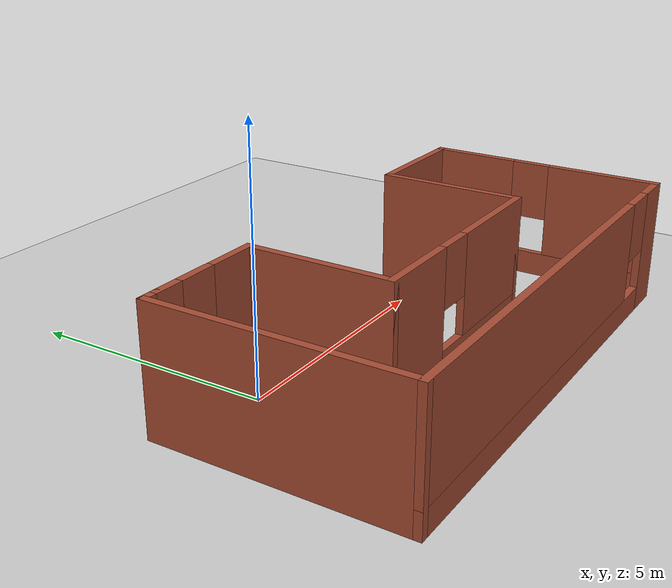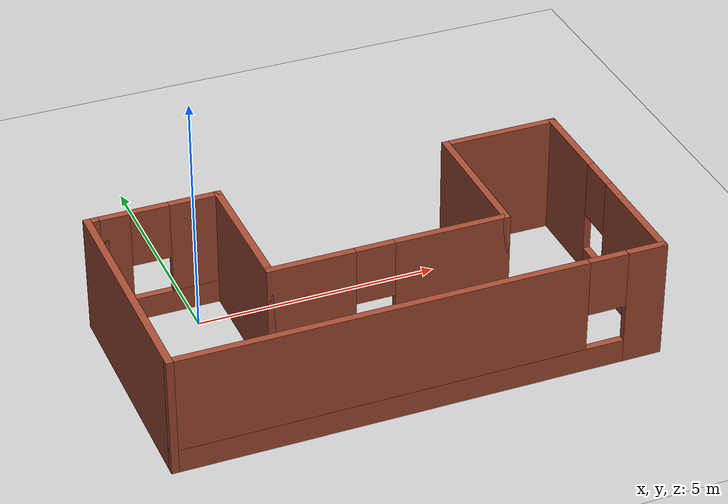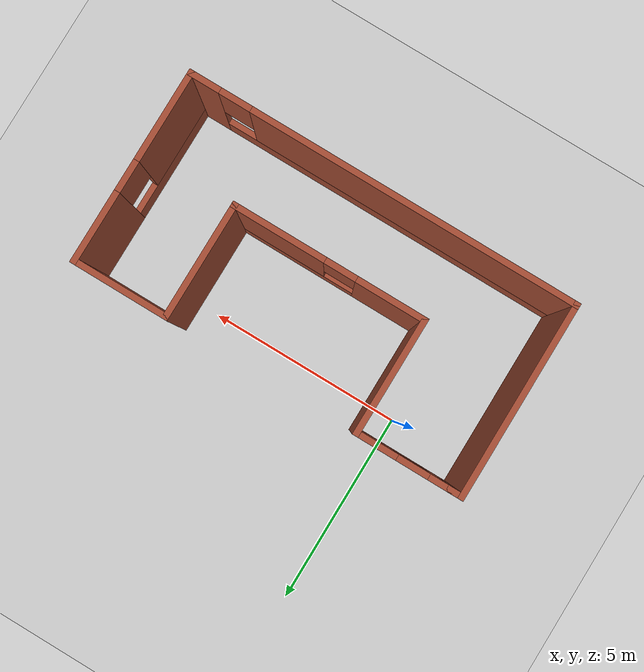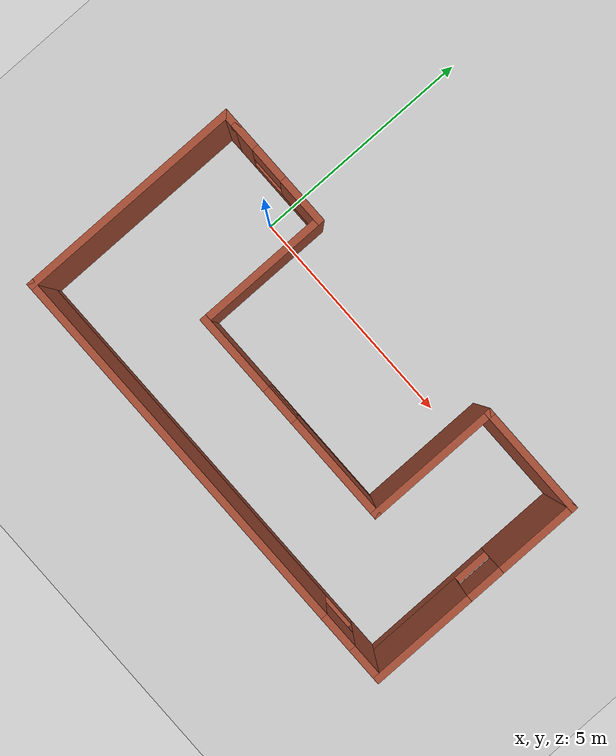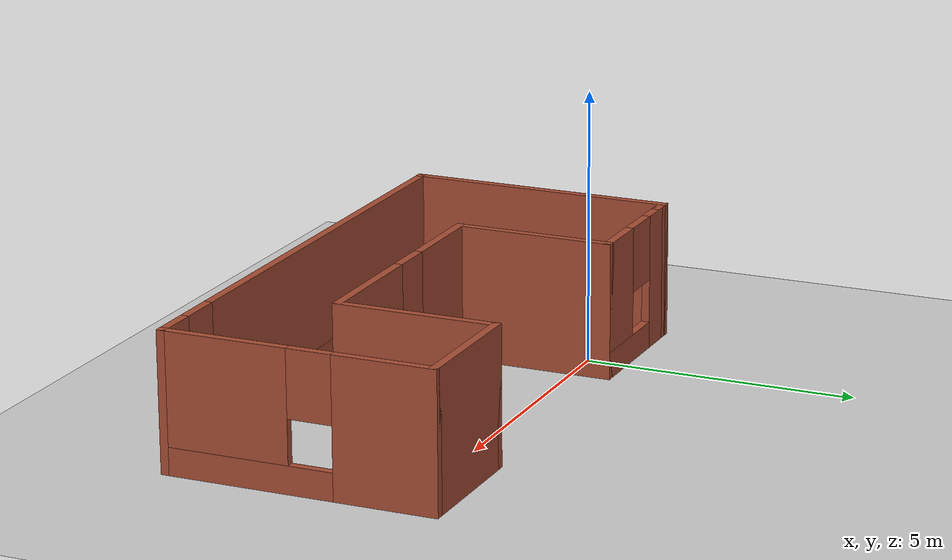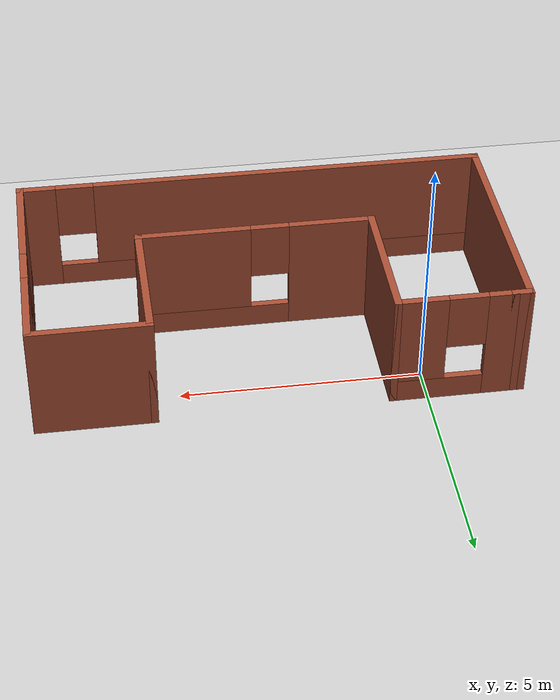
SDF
<sdf version="1.6">
 <world name="default">
  <light name="sun" type="directional">
   <pose>0 0 10 0 -0 0</pose>
   <diffuse>0.8 0.8 0.8 1</diffuse>
   <specular>0.2 0.2 0.2 1</specular>
   <attenuation>
    <range>1000</range>
    <constant>0.9</constant>
    <linear>0.01</linear>
    <quadratic>0.001</quadratic>
   </attenuation>
   <direction>-0.5 0.1 -0.9</direction>
  </light>
  <model name="ground_plane">
   <static>1</static>
   <link name="link">
    <collision name="collision">
     <geometry><plane><normal>0 0 1</normal><size>100 100</size></plane></geometry>
     <surface><friction><ode><mu>100</mu><mu2>50</mu2></ode></friction></surface>
    </collision>
    <visual name="visual">
     <cast_shadows>0</cast_shadows>
     <geometry><plane><normal>0 0 1</normal><size>100 100</size></plane></geometry>
     <material>
      <script><uri>file://media/materials/scripts/gazebo.material</uri><name>Gazebo/Grey</name></script>
     </material>
    </visual>
   </link>
  </model>
  <gravity>0 0 -9.8</gravity>
  <magnetic_field>6e-06 2.3e-05 -4.2e-05</magnetic_field>
  <atmosphere type="adiabatic"/>
  <physics name="default_physics" default="0" type="ode">
   <max_step_size>0.001</max_step_size>
   <real_time_factor>1</real_time_factor>
   <real_time_update_rate>1000</real_time_update_rate>
  </physics>
  <scene><ambient>0.4 0.4 0.4 1</ambient><background>0.7 0.7 0.7 1</background><shadows>1</shadows></scene>
  <spherical_coordinates>
   <surface_model>EARTH_WGS84</surface_model>
   <latitude_deg>0</latitude_deg>
   <longitude_deg>0</longitude_deg>
   <elevation>0</elevation>
   <heading_deg>0</heading_deg>
  </spherical_coordinates>
  <model name="Home">
   <pose>2.99356 -1.76982 0 0 -0 0</pose>
   <link name="Wall_0">
    <pose>-3.45 2.425 0 0 -0 0</pose>
    <visual name="Wall_0_Visual_0">
     <pose>-0.9475 0 1.25 0 -0 0</pose>
     <geometry><box><size>0.605 0.15 2.5</size></box></geometry>
     <material>
      <script><uri>file://media/materials/scripts/gazebo.material</uri><name>Gazebo/Bricks</name></script>
      <ambient>1 1 1 1</ambient>
     </material>
     <meta><layer>0</layer></meta>
    </visual>
    <collision name="Wall_0_Collision_0">
     <geometry><box><size>0.605 0.15 2.5</size></box></geometry>
     <pose>-0.9475 0 1.25 0 -0 0</pose>
    </collision>
    <visual name="Wall_0_Visual_1">
     <pose>0.3025 0 0.25 0 -0 0</pose>
     <geometry><box><size>1.895 0.15 0.5</size></box></geometry>
     <material>
      <script><uri>file://media/materials/scripts/gazebo.material</uri><name>Gazebo/Bricks</name></script>
      <ambient>1 1 1 1</ambient>
     </material>
     <meta><layer>0</layer></meta>
    </visual>
    <collision name="Wall_0_Collision_1">
     <geometry><box><size>1.895 0.15 0.5</size></box></geometry>
     <pose>0.3025 0 0.25 0 -0 0</pose>
    </collision>
    <visual name="Wall_0_Visual_2">
     <pose>0.7025 0 1.5 0 -0 0</pose>
     <geometry><box><size>1.095 0.15 2</size></box></geometry>
     <material>
      <script><uri>file://media/materials/scripts/gazebo.material</uri><name>Gazebo/Bricks</name></script>
      <ambient>1 1 1 1</ambient>
     </material>
     <meta><layer>0</layer></meta>
    </visual>
    <collision name="Wall_0_Collision_2">
     <geometry><box><size>1.095 0.15 2</size></box></geometry>
     <pose>0.7025 0 1.5 0 -0 0</pose>
    </collision>
    <visual name="Wall_0_Visual_3">
     <pose>-0.245 0 1.9 0 -0 0</pose>
     <geometry><box><size>0.8 0.15 1.2</size></box></geometry>
     <material>
      <script><uri>file://media/materials/scripts/gazebo.material</uri><name>Gazebo/Bricks</name></script>
      <ambient>1 1 1 1</ambient>
     </material>
     <meta><layer>0</layer></meta>
    </visual>
    <collision name="Wall_0_Collision_3">
     <geometry><box><size>0.8 0.15 1.2</size></box></geometry>
     <pose>-0.245 0 1.9 0 -0 0</pose>
    </collision>
   </link>
   <link name="Wall_1">
    <collision name="Wall_1_Collision">
     <geometry><box><size>3 0.15 2.5</size></box></geometry>
     <pose>0 0 1.25 0 -0 0</pose>
    </collision>
    <visual name="Wall_1_Visual">
     <pose>0 0 1.25 0 -0 0</pose>
     <geometry><box><size>3 0.15 2.5</size></box></geometry>
     <material>
      <script><uri>file://media/materials/scripts/gazebo.material</uri><name>Gazebo/Bricks</name></script>
      <ambient>1 1 1 1</ambient>
     </material>
     <meta><layer>0</layer></meta>
    </visual>
    <pose>-2.275 1 0 0 0 -1.5708</pose>
   </link>
   <link name="Wall_2">
    <pose>0.15 -0.425 0 0 -0 0</pose>
    <visual name="Wall_2_Visual_0">
     <pose>-1.5975 0 1.25 0 -0 0</pose>
     <geometry><box><size>1.805 0.15 2.5</size></box></geometry>
     <material>
      <script><uri>file://media/materials/scripts/gazebo.material</uri><name>Gazebo/Bricks</name></script>
      <ambient>1 1 1 1</ambient>
     </material>
     <meta><layer>0</layer></meta>
    </visual>
    <collision name="Wall_2_Collision_0">
     <geometry><box><size>1.805 0.15 2.5</size></box></geometry>
     <pose>-1.5975 0 1.25 0 -0 0</pose>
    </collision>
    <visual name="Wall_2_Visual_1">
     <pose>0.9025 0 0.25 0 -0 0</pose>
     <geometry><box><size>3.195 0.15 0.5</size></box></geometry>
     <material>
      <script><uri>file://media/materials/scripts/gazebo.material</uri><name>Gazebo/Bricks</name></script>
      <ambient>1 1 1 1</ambient>
     </material>
     <meta><layer>0</layer></meta>
    </visual>
    <collision name="Wall_2_Collision_1">
     <geometry><box><size>3.195 0.15 0.5</size></box></geometry>
     <pose>0.9025 0 0.25 0 -0 0</pose>
    </collision>
    <visual name="Wall_2_Visual_2">
     <pose>1.3025 0 1.5 0 -0 0</pose>
     <geometry><box><size>2.395 0.15 2</size></box></geometry>
     <material>
      <script><uri>file://media/materials/scripts/gazebo.material</uri><name>Gazebo/Bricks</name></script>
      <ambient>1 1 1 1</ambient>
     </material>
     <meta><layer>0</layer></meta>
    </visual>
    <collision name="Wall_2_Collision_2">
     <geometry><box><size>2.395 0.15 2</size></box></geometry>
     <pose>1.3025 0 1.5 0 -0 0</pose>
    </collision>
    <visual name="Wall_2_Visual_3">
     <pose>-0.295 0 1.9 0 -0 0</pose>
     <geometry><box><size>0.8 0.15 1.2</size></box></geometry>
     <material>
      <script><uri>file://media/materials/scripts/gazebo.material</uri><name>Gazebo/Bricks</name></script>
      <ambient>1 1 1 1</ambient>
     </material>
     <meta><layer>0</layer></meta>
    </visual>
    <collision name="Wall_2_Collision_3">
     <geometry><box><size>0.8 0.15 1.2</size></box></geometry>
     <pose>-0.295 0 1.9 0 -0 0</pose>
    </collision>
   </link>
   <link name="Wall_3">
    <collision name="Wall_3_Collision">
     <geometry><box><size>3 0.15 2.5</size></box></geometry>
     <pose>0 0 1.25 0 -0 0</pose>
    </collision>
    <visual name="Wall_3_Visual">
     <pose>0 0 1.25 0 -0 0</pose>
     <geometry><box><size>3 0.15 2.5</size></box></geometry>
     <material>
      <script><uri>file://media/materials/scripts/gazebo.material</uri><name>Gazebo/Bricks</name></script>
      <ambient>1 1 1 1</ambient>
     </material>
     <meta><layer>0</layer></meta>
    </visual>
    <pose>2.575 1 0 0 -0 1.5708</pose>
   </link>
   <link name="Wall_4">
    <collision name="Wall_4_Collision">
     <geometry><box><size>2.5 0.15 2.5</size></box></geometry>
     <pose>0 0 1.25 0 -0 0</pose>
    </collision>
    <visual name="Wall_4_Visual">
     <pose>0 0 1.25 0 -0 0</pose>
     <geometry><box><size>2.5 0.15 2.5</size></box></geometry>
     <material>
      <script><uri>file://media/materials/scripts/gazebo.material</uri><name>Gazebo/Bricks</name></script>
      <ambient>1 1 1 1</ambient>
     </material>
     <meta><layer>0</layer></meta>
    </visual>
    <pose>3.75 2.425 0 0 -0 0</pose>
   </link>
   <link name="Wall_5">
    <pose>4.925 0 0 0 0 -1.5708</pose>
    <visual name="Wall_5_Visual_0">
     <pose>-1.5725 0 1.25 0 -0 0</pose>
     <geometry><box><size>1.855 0.15 2.5</size></box></geometry>
     <material>
      <script><uri>file://media/materials/scripts/gazebo.material</uri><name>Gazebo/Bricks</name></script>
      <ambient>1 1 1 1</ambient>
     </material>
     <meta><layer>0</layer></meta>
    </visual>
    <collision name="Wall_5_Collision_0">
     <geometry><box><size>1.855 0.15 2.5</size></box></geometry>
     <pose>-1.5725 0 1.25 0 -0 0</pose>
    </collision>
    <visual name="Wall_5_Visual_1">
     <pose>0.9275 0 0.25 0 -0 0</pose>
     <geometry><box><size>3.145 0.15 0.5</size></box></geometry>
     <material>
      <script><uri>file://media/materials/scripts/gazebo.material</uri><name>Gazebo/Bricks</name></script>
      <ambient>1 1 1 1</ambient>
     </material>
     <meta><layer>0</layer></meta>
    </visual>
    <collision name="Wall_5_Collision_1">
     <geometry><box><size>3.145 0.15 0.5</size></box></geometry>
     <pose>0.9275 0 0.25 0 -0 0</pose>
    </collision>
    <visual name="Wall_5_Visual_2">
     <pose>1.3275 0 1.5 0 -0 0</pose>
     <geometry><box><size>2.345 0.15 2</size></box></geometry>
     <material>
      <script><uri>file://media/materials/scripts/gazebo.material</uri><name>Gazebo/Bricks</name></script>
      <ambient>1 1 1 1</ambient>
     </material>
     <meta><layer>0</layer></meta>
    </visual>
    <collision name="Wall_5_Collision_2">
     <geometry><box><size>2.345 0.15 2</size></box></geometry>
     <pose>1.3275 0 1.5 0 -0 0</pose>
    </collision>
    <visual name="Wall_5_Visual_3">
     <pose>-0.245 0 1.9 0 -0 0</pose>
     <geometry><box><size>0.8 0.15 1.2</size></box></geometry>
     <material>
      <script><uri>file://media/materials/scripts/gazebo.material</uri><name>Gazebo/Bricks</name></script>
      <ambient>1 1 1 1</ambient>
     </material>
     <meta><layer>0</layer></meta>
    </visual>
    <collision name="Wall_5_Collision_3">
     <geometry><box><size>0.8 0.15 1.2</size></box></geometry>
     <pose>-0.245 0 1.9 0 -0 0</pose>
    </collision>
   </link>
   <link name="Wall_6">
    <pose>0 -2.425 0 0 -0 3.14159</pose>
    <visual name="Wall_6_Visual_0">
     <pose>-4.5875 0 1.25 0 -0 0</pose>
     <geometry><box><size>0.825 0.15 2.5</size></box></geometry>
     <material>
      <script><uri>file://media/materials/scripts/gazebo.material</uri><name>Gazebo/Bricks</name></script>
      <ambient>1 1 1 1</ambient>
     </material>
     <meta><layer>0</layer></meta>
    </visual>
    <collision name="Wall_6_Collision_0">
     <geometry><box><size>0.825 0.15 2.5</size></box></geometry>
     <pose>-4.5875 0 1.25 0 -0 0</pose>
    </collision>
    <visual name="Wall_6_Visual_1">
     <pose>0.4125 0 0.25 0 -0 0</pose>
     <geometry><box><size>9.175 0.15 0.5</size></box></geometry>
     <material>
      <script><uri>file://media/materials/scripts/gazebo.material</uri><name>Gazebo/Bricks</name></script>
      <ambient>1 1 1 1</ambient>
     </material>
     <meta><layer>0</layer></meta>
    </visual>
    <collision name="Wall_6_Collision_1">
     <geometry><box><size>9.175 0.15 0.5</size></box></geometry>
     <pose>0.4125 0 0.25 0 -0 0</pose>
    </collision>
    <visual name="Wall_6_Visual_2">
     <pose>0.8125 0 1.5 0 -0 0</pose>
     <geometry><box><size>8.375 0.15 2</size></box></geometry>
     <material>
      <script><uri>file://media/materials/scripts/gazebo.material</uri><name>Gazebo/Bricks</name></script>
      <ambient>1 1 1 1</ambient>
     </material>
     <meta><layer>0</layer></meta>
    </visual>
    <collision name="Wall_6_Collision_2">
     <geometry><box><size>8.375 0.15 2</size></box></geometry>
     <pose>0.8125 0 1.5 0 -0 0</pose>
    </collision>
    <visual name="Wall_6_Visual_3">
     <pose>-3.775 0 1.9 0 -0 0</pose>
     <geometry><box><size>0.8 0.15 1.2</size></box></geometry>
     <material>
      <script><uri>file://media/materials/scripts/gazebo.material</uri><name>Gazebo/Bricks</name></script>
      <ambient>1 1 1 1</ambient>
     </material>
     <meta><layer>0</layer></meta>
    </visual>
    <collision name="Wall_6_Collision_3">
     <geometry><box><size>0.8 0.15 1.2</size></box></geometry>
     <pose>-3.775 0 1.9 0 -0 0</pose>
    </collision>
   </link>
   <link name="Wall_7">
    <collision name="Wall_7_Collision">
     <geometry><box><size>5 0.15 2.5</size></box></geometry>
     <pose>0 0 1.25 0 -0 0</pose>
    </collision>
    <visual name="Wall_7_Visual">
     <pose>0 0 1.25 0 -0 0</pose>
     <geometry><box><size>5 0.15 2.5</size></box></geometry>
     <material>
      <script><uri>file://media/materials/scripts/gazebo.material</uri><name>Gazebo/Bricks</name></script>
      <ambient>1 1 1 1</ambient>
     </material>
     <meta><layer>0</layer></meta>
    </visual>
    <pose>-4.925 0 0 0 -0 1.5708</pose>
   </link>
   <link name="Wall_8">
    <collision name="Wall_8_Collision">
     <geometry><box><size>0.45 0.15 2.5</size></box></geometry>
     <pose>0 0 1.25 0 -0 0</pose>
    </collision>
    <visual name="Wall_8_Visual">
     <pose>0 0 1.25 0 -0 0</pose>
     <geometry><box><size>0.45 0.15 2.5</size></box></geometry>
     <material>
      <script><uri>file://media/materials/scripts/gazebo.material</uri><name>Gazebo/Bricks</name></script>
      <ambient>1 1 1 1</ambient>
     </material>
     <meta><layer>0</layer></meta>
    </visual>
    <pose>-4.775 2.425 0 0 -0 0</pose>
   </link>
   <static>1</static>
  </model>
 </world>
</sdf>
